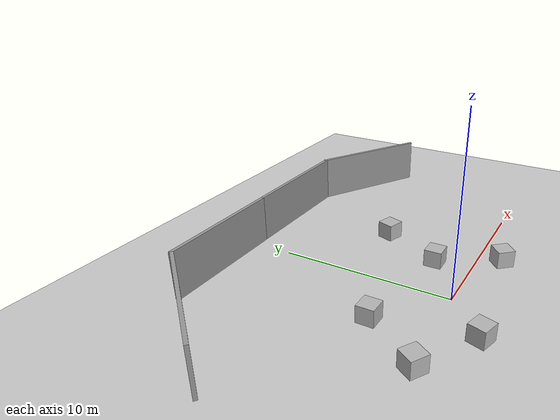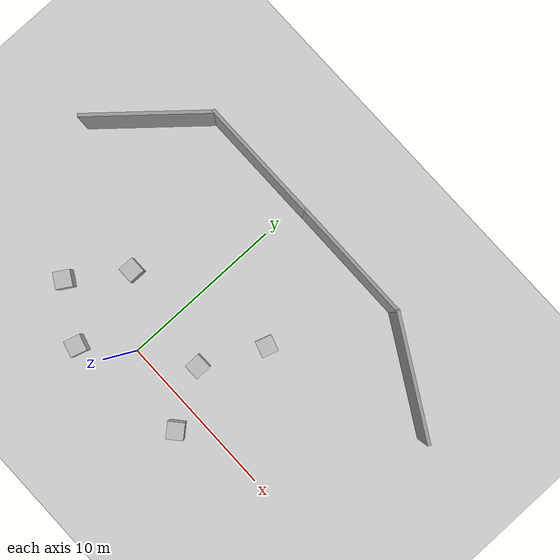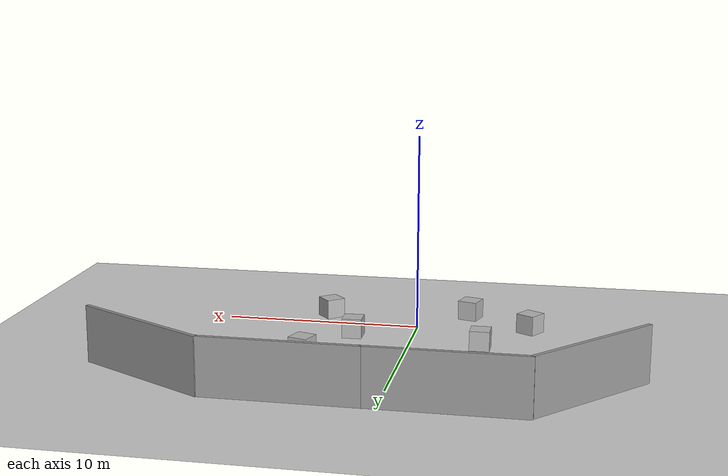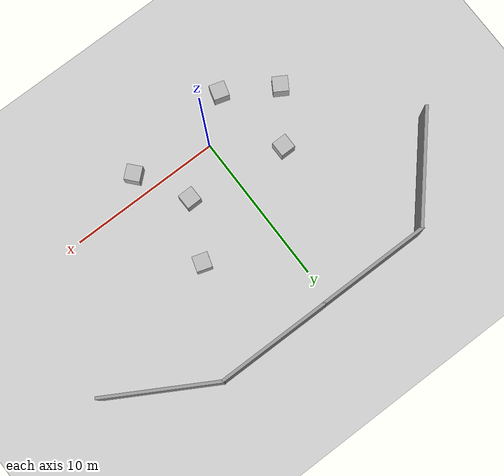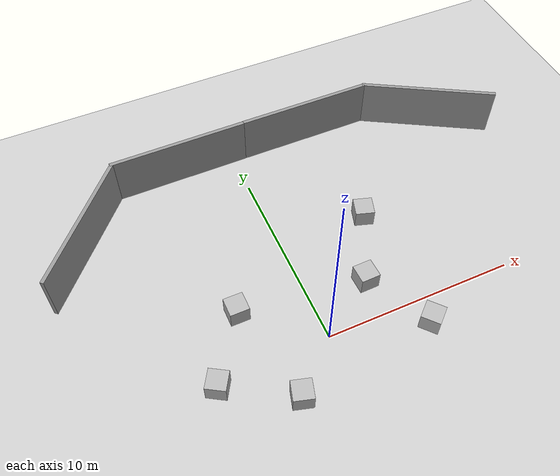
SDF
<sdf version="1.7">
 <world name="default">
  <light name="sun" type="directional">
   <pose>0 0 10 0 -0 0</pose>
   <diffuse>0.8 0.8 0.8 1</diffuse>
   <specular>0.2 0.2 0.2 1</specular>
   <attenuation>
    <range>1000</range>
    <constant>0.9</constant>
    <linear>0.01</linear>
    <quadratic>0.001</quadratic>
   </attenuation>
   <direction>-0.5 0.1 -0.9</direction>
   <spot><inner_angle>0</inner_angle><outer_angle>0</outer_angle><falloff>0</falloff></spot>
  </light>
  <model name="ground_plane">
   <static>1</static>
   <link name="link">
    <collision name="collision">
     <geometry><plane><normal>0 0 1</normal><size>100 100</size></plane></geometry>
     <surface><friction><ode><mu>100</mu><mu2>50</mu2></ode></friction></surface>
    </collision>
    <visual name="visual">
     <cast_shadows>0</cast_shadows>
     <geometry><plane><normal>0 0 1</normal><size>100 100</size></plane></geometry>
     <material>
      <script><uri>file://media/materials/scripts/gazebo.material</uri><name>Gazebo/Grey</name></script>
     </material>
    </visual>
   </link>
  </model>
  <gravity>0 0 -9.8</gravity>
  <magnetic_field>6e-06 2.3e-05 -4.2e-05</magnetic_field>
  <atmosphere type="adiabatic"/>
  <physics type="ode">
   <max_step_size>0.001</max_step_size>
   <real_time_factor>1</real_time_factor>
   <real_time_update_rate>1000</real_time_update_rate>
  </physics>
  <scene><ambient>0.4 0.4 0.4 1</ambient><background>0.7 0.7 0.7 1</background><shadows>1</shadows></scene>
  <audio><device>default</device></audio>
  <spherical_coordinates>
   <surface_model>EARTH_WGS84</surface_model>
   <latitude_deg>0</latitude_deg>
   <longitude_deg>0</longitude_deg>
   <elevation>0</elevation>
   <heading_deg>0</heading_deg>
  </spherical_coordinates>
  <model name="test_box">
   <pose>3.00448 2.04617 0.5 0 -0 0.017994</pose>
   <link name="link">
    <collision name="collision"><geometry><box><size>1 1 1</size></box></geometry></collision>
    <visual name="visual"><geometry><box><size>1 1 1</size></box></geometry></visual>
    <inertial>
     <inertia><ixx>1</ixx><ixy>0</ixy><ixz>0</ixz><iyy>1</iyy><iyz>0</iyz><izz>1</izz></inertia>
     <mass>1</mass>
    </inertial>
   </link>
  </model>
  <model name="test_box_0">
   <pose>-5.76926 -0.28185 0.5 0 -0 -0.545733</pose>
   <link name="link">
    <collision name="collision"><geometry><box><size>1 1 1</size></box></geometry></collision>
    <visual name="visual"><geometry><box><size>1 1 1</size></box></geometry></visual>
    <inertial>
     <inertia><ixx>1</ixx><ixy>0</ixy><ixz>0</ixz><iyy>1</iyy><iyz>0</iyz><izz>1</izz></inertia>
     <mass>1</mass>
    </inertial>
   </link>
  </model>
  <model name="test_box_0_clone">
   <pose>4.82081 -1.28365 0.5 0 -0 0.719094</pose>
   <link name="link">
    <collision name="collision"><geometry><box><size>1 1 1</size></box></geometry></collision>
    <visual name="visual"><geometry><box><size>1 1 1</size></box></geometry></visual>
    <inertial>
     <inertia><ixx>1</ixx><ixy>0</ixy><ixz>0</ixz><iyy>1</iyy><iyz>0</iyz><izz>1</izz></inertia>
     <mass>1</mass>
    </inertial>
   </link>
  </model>
  <model name="test_box_0_clone_0">
   <pose>4.79229 5.67658 0.5 0 -0 -0.305795</pose>
   <link name="link">
    <collision name="collision"><geometry><box><size>1 1 1</size></box></geometry></collision>
    <visual name="visual"><geometry><box><size>1 1 1</size></box></geometry></visual>
    <inertial>
     <inertia><ixx>1</ixx><ixy>0</ixy><ixz>0</ixz><iyy>1</iyy><iyz>0</iyz><izz>1</izz></inertia>
     <mass>1</mass>
    </inertial>
   </link>
  </model>
  <model name="test_box_0_clone_1">
   <pose>-3.55113 2.92786 0.5 0 -0 0</pose>
   <link name="link">
    <collision name="collision"><geometry><box><size>1 1 1</size></box></geometry></collision>
    <visual name="visual"><geometry><box><size>1 1 1</size></box></geometry></visual>
    <inertial>
     <inertia><ixx>1</ixx><ixy>0</ixy><ixz>0</ixz><iyy>1</iyy><iyz>0</iyz><izz>1</izz></inertia>
     <mass>1</mass>
    </inertial>
   </link>
  </model>
  <model name="test_box_0_clone_2">
   <pose>-2.49598 -2.25352 0.5 0 -0 -0.285425</pose>
   <link name="link">
    <collision name="collision"><geometry><box><size>1 1 1</size></box></geometry></collision>
    <visual name="visual"><geometry><box><size>1 1 1</size></box></geometry></visual>
    <inertial>
     <inertia><ixx>1</ixx><ixy>0</ixy><ixz>0</ixz><iyy>1</iyy><iyz>0</iyz><izz>1</izz></inertia>
     <mass>1</mass>
    </inertial>
   </link>
  </model>
  <model name="grey_wall">
   <static>1</static>
   <link name="link">
    <pose>0 0 1.4 0 -0 0</pose>
    <collision name="collision"><geometry><box><size>7.5 0.2 2.8</size></box></geometry></collision>
    <visual name="visual">
     <cast_shadows>0</cast_shadows>
     <geometry><box><size>7.5 0.2 2.8</size></box></geometry>
     <material>
      <script>
       <uri>model://grey_wall/materials/scripts</uri>
       <uri>model://grey_wall/materials/textures</uri>
       <name>vrc/grey_wall</name>
      </script>
     </material>
    </visual>
   </link>
   <pose>-9.11635 9.3987 0 0 -0 0.856952</pose>
  </model>
  <model name="grey_wall_clone">
   <static>1</static>
   <link name="link">
    <pose>0 0 1.4 0 -0 0</pose>
    <collision name="collision"><geometry><box><size>7.5 0.2 2.8</size></box></geometry></collision>
    <visual name="visual">
     <cast_shadows>0</cast_shadows>
     <geometry><box><size>7.5 0.2 2.8</size></box></geometry>
     <material>
      <script>
       <uri>model://grey_wall/materials/scripts</uri>
       <uri>model://grey_wall/materials/textures</uri>
       <name>vrc/grey_wall</name>
      </script>
     </material>
    </visual>
   </link>
   <pose>-3.02715 12.2442 0 0 -0 0</pose>
  </model>
  <model name="grey_wall_clone_clone">
   <static>1</static>
   <link name="link">
    <pose>0 0 1.4 0 -0 0</pose>
    <collision name="collision"><geometry><box><size>7.5 0.2 2.8</size></box></geometry></collision>
    <visual name="visual">
     <cast_shadows>0</cast_shadows>
     <geometry><box><size>7.5 0.2 2.8</size></box></geometry>
     <material>
      <script>
       <uri>model://grey_wall/materials/scripts</uri>
       <uri>model://grey_wall/materials/textures</uri>
       <name>vrc/grey_wall</name>
      </script>
     </material>
    </visual>
   </link>
   <pose>4.37106 12.2428 0 0 0 -0.003454</pose>
  </model>
  <model name="grey_wall_clone_clone_clone">
   <static>1</static>
   <link name="link">
    <pose>0 0 1.4 0 -0 0</pose>
    <collision name="collision"><geometry><box><size>7.5 0.2 2.8</size></box></geometry></collision>
    <visual name="visual">
     <cast_shadows>0</cast_shadows>
     <geometry><box><size>7.5 0.2 2.8</size></box></geometry>
     <material>
      <script>
       <uri>model://grey_wall/materials/scripts</uri>
       <uri>model://grey_wall/materials/textures</uri>
       <name>vrc/grey_wall</name>
      </script>
     </material>
    </visual>
   </link>
   <pose>11.2783 10.418 0 0 0 -0.522367</pose>
  </model>
 </world>
</sdf>
